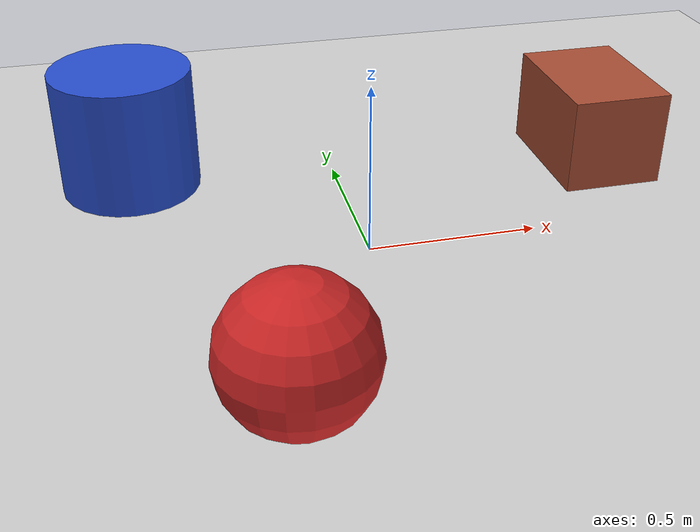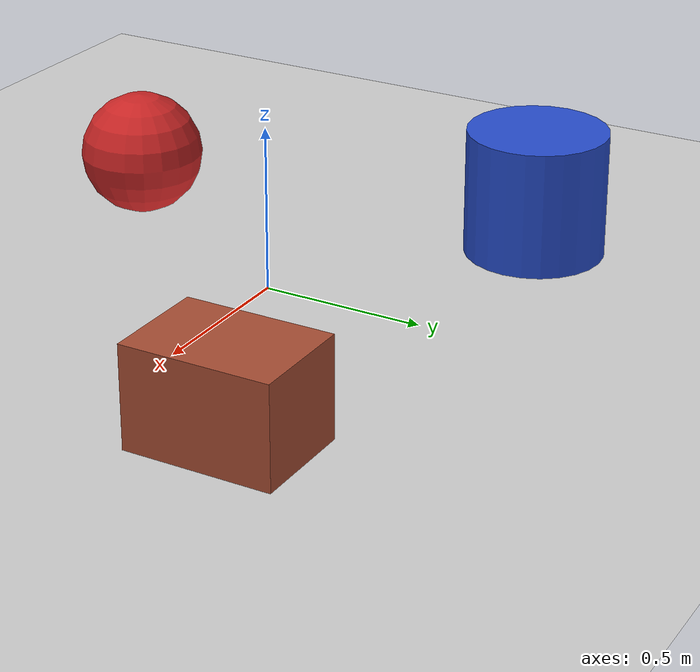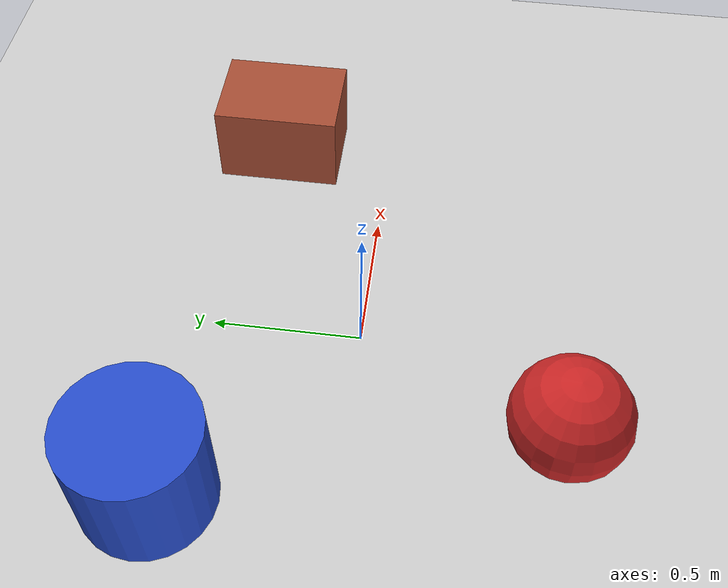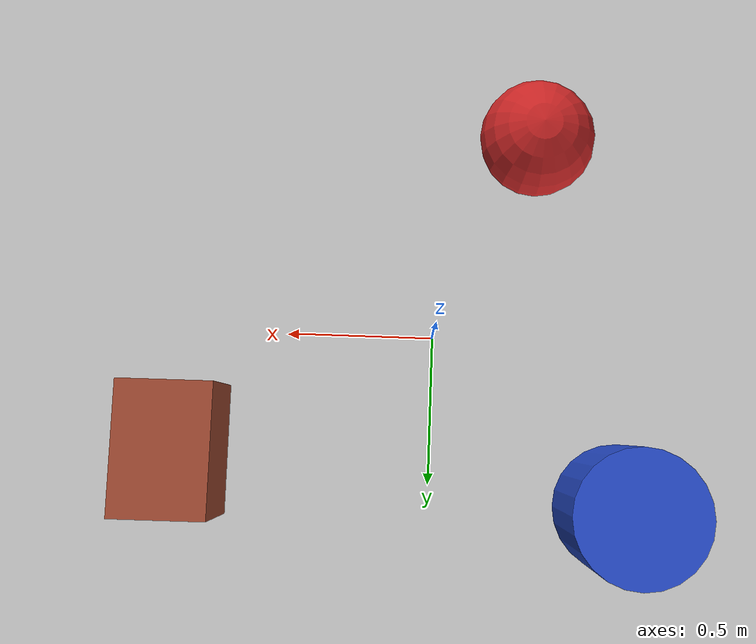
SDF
<sdf version="1.7">
 <world name="default">
  <light name="sun" type="directional">
   <pose>0 0 10 0 -0 0</pose>
   <diffuse>0.8 0.8 0.8 1</diffuse>
   <specular>0.2 0.2 0.2 1</specular>
   <attenuation>
    <range>1000</range>
    <constant>0.9</constant>
    <linear>0.01</linear>
    <quadratic>0.001</quadratic>
   </attenuation>
   <direction>-0.5 0.1 -0.9</direction>
   <spot><inner_angle>0</inner_angle><outer_angle>0</outer_angle><falloff>0</falloff></spot>
  </light>
  <model name="ground_plane">
   <static>1</static>
   <link name="link">
    <collision name="collision">
     <geometry><plane><normal>0 0 1</normal><size>100 100</size></plane></geometry>
     <surface><friction><ode><mu>100</mu><mu2>50</mu2></ode></friction></surface>
    </collision>
    <visual name="visual">
     <cast_shadows>0</cast_shadows>
     <geometry><plane><normal>0 0 1</normal><size>100 100</size></plane></geometry>
     <material>
      <script><uri>file://media/materials/scripts/gazebo.material</uri><name>Gazebo/Gray</name></script>
     </material>
    </visual>
   </link>
  </model>
  <gravity>0 0 -9.8</gravity>
  <magnetic_field>6e-06 2.3e-05 -4.2e-05</magnetic_field>
  <atmosphere type="adiabatic"/>
  <physics type="ode">
   <max_step_size>0.001</max_step_size>
   <real_time_factor>1</real_time_factor>
   <real_time_update_rate>1000</real_time_update_rate>
  </physics>
  <scene><ambient>0.4 0.4 0.4 1</ambient><background>0.7 0.7 0.7 1</background><shadows>1</shadows></scene>
  <spherical_coordinates>
   <surface_model>EARTH_WGS84</surface_model>
   <latitude_deg>0</latitude_deg>
   <longitude_deg>0</longitude_deg>
   <elevation>0</elevation>
   <heading_deg>0</heading_deg>
  </spherical_coordinates>
  <model name="unit_box">
   <pose>0.845416 0.402407 0.149045 0 -0 0</pose>
   <link name="link">
    <inertial>
     <mass>1</mass>
     <inertia>
      <ixx>0.166667</ixx>
      <ixy>0</ixy>
      <ixz>0</ixz>
      <iyy>0.166667</iyy>
      <iyz>0</iyz>
      <izz>0.166667</izz>
     </inertia>
    </inertial>
    <collision name="collision"><geometry><box><size>0.312134 0.437001 0.29809</size></box></geometry></collision>
    <visual name="visual">
     <geometry><box><size>0.312134 0.437001 0.29809</size></box></geometry>
     <material>
      <script><name>Gazebo/Bricks</name><uri>file://media/materials/scripts/gazebo.material</uri></script>
     </material>
    </visual>
   </link>
  </model>
  <model name="unit_sphere">
   <pose>-0.329617 -0.665251 0.191269 0 -0 0</pose>
   <link name="link">
    <inertial>
     <mass>1</mass>
     <inertia><ixx>0.1</ixx><ixy>0</ixy><ixz>0</ixz><iyy>0.1</iyy><iyz>0</iyz><izz>0.1</izz></inertia>
    </inertial>
    <collision name="collision"><geometry><sphere><radius>0.191269</radius></sphere></geometry></collision>
    <visual name="visual">
     <geometry><sphere><radius>0.191269</radius></sphere></geometry>
     <material>
      <script><name>Gazebo/Red</name><uri>file://media/materials/scripts/gazebo.material</uri></script>
     </material>
    </visual>
   </link>
  </model>
  <model name="unit_cylinder">
   <pose>-0.641569 0.560384 0.195146 0 -0 0</pose>
   <link name="link">
    <inertial>
     <mass>1</mass>
     <inertia><ixx>0.145833</ixx><ixy>0</ixy><ixz>0</ixz><iyy>0.145833</iyy><iyz>0</iyz><izz>0.125</izz></inertia>
    </inertial>
    <collision name="collision">
     <geometry><cylinder><radius>0.215568</radius><length>0.390311</length></cylinder></geometry>
    </collision>
    <visual name="visual">
     <geometry><cylinder><radius>0.215568</radius><length>0.390311</length></cylinder></geometry>
     <material>
      <script><name>Gazebo/Blue</name><uri>file://media/materials/scripts/gazebo.material</uri></script>
     </material>
    </visual>
   </link>
  </model>
 </world>
</sdf>
